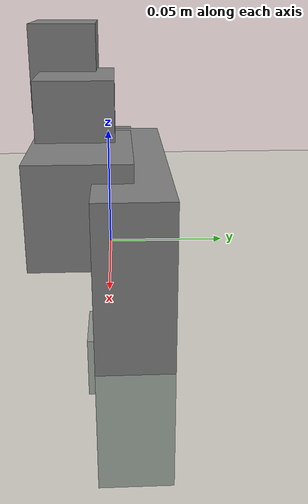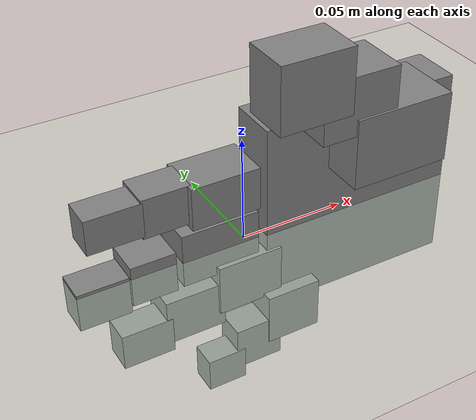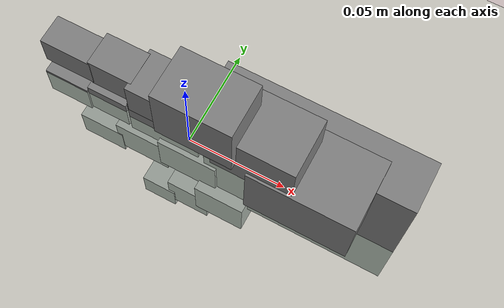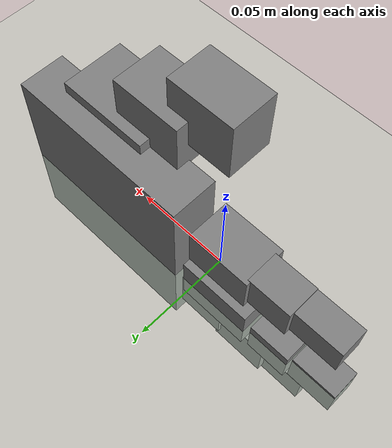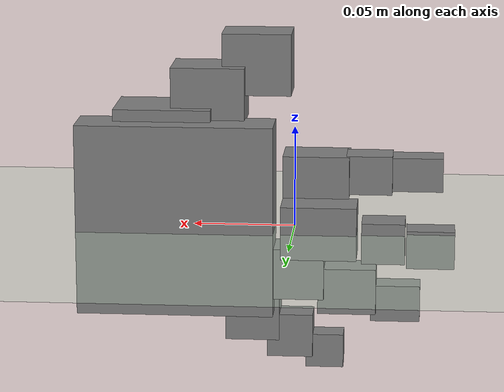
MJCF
<mujoco model="humanoid">
  <compiler coordinate="local"/>
  <statistic extent="2" center="0 0 1"/>
  <option timestep="0.00555"/>
  <default>
    <motor ctrlrange="-1 1" ctrllimited="true"/>
    <geom type="capsule" condim="3" friction="1.0 0.05 0.05" solimp=".9 .99 .003" solref=".015 1"/>
    <joint type="hinge" damping="0.1" stiffness="5" armature=".007" limited="true" solimplimit="0 .99 .01"/>
    <site size=".04" group="3"/>
    <default class="force-torque">
      <site type="box" size=".01 .01 .02" rgba="1 0 0 1"/>
    </default>
    <default class="touch">
      <site type="capsule" rgba="0 0 1 .3"/>
    </default>
  </default>
  <asset>
    <texture type="skybox" builtin="gradient" rgb1=".4 .5 .6" rgb2="0 0 0" width="100" height="100"/>
    <texture builtin="flat" height="1278" mark="cross" markrgb="1 1 1" name="texgeom" random="0.01" rgb1="0.8 0.6 0.4" rgb2="0.8 0.6 0.4" type="cube" width="127"/>
    <texture builtin="checker" height="100" name="texplane" rgb1="0 0 0" rgb2="0.8 0.8 0.8" type="2d" width="100"/>
    <material name="MatPlane" reflectance="0.5" shininess="1" specular="1" texrepeat="60 60" texture="texplane"/>
    <material name="geom" texture="texgeom" texuniform="true"/>
  </asset>
  <worldbody>
    <light cutoff="100" diffuse="1 1 1" dir="-0 0 -1.3" directional="true" exponent="1" pos="0 0 1.3" specular=".1 .1 .1"/>
    <geom conaffinity="1" condim="3" name="floor" pos="0 0 0" rgba="0.8 0.9 0.8 1" size="100 100 .2" type="plane" material="MatPlane"/>
    <body name="R_Wrist" pos="0.0957 0.0064 0.0062">
      <freejoint name="R_Wrist"/>
      <geom type="box" density="1206.741687" pos="-0.0375 0.0016 -0.0005" size="0.0485 0.012 0.0474" quat="1.0000 0.0000 0.0000 0.0000"/>
      <body name="R_Index1" pos="-0.0881 -0.0052 0.0207">
        <joint name="R_Index1_x" type="hinge" pos="0 0 0" axis="1 0 0" stiffness="100" damping="10" armature="0.02" range="-180.0000 180.0000"/>
        <joint name="R_Index1_y" type="hinge" pos="0 0 0" axis="0 1 0" stiffness="100" damping="10" armature="0.02" range="-180.0000 180.0000"/>
        <joint name="R_Index1_z" type="hinge" pos="0 0 0" axis="0 0 1" stiffness="100" damping="10" armature="0.02" range="-180.0000 180.0000"/>
        <geom type="box" density="601.310211" pos="-0.0187 0.0034 0.0012" size="0.0162 0.0112 0.0103" quat="1.0000 0.0000 0.0000 0.0000"/>
        <body name="R_Index2" pos="-0.0327 0.004 0.0022">
          <joint name="R_Index2_x" type="hinge" pos="0 0 0" axis="1 0 0" stiffness="100" damping="10" armature="0.02" range="-180.0000 180.0000"/>
          <joint name="R_Index2_y" type="hinge" pos="0 0 0" axis="0 1 0" stiffness="100" damping="10" armature="0.02" range="-180.0000 180.0000"/>
          <joint name="R_Index2_z" type="hinge" pos="0 0 0" axis="0 0 1" stiffness="100" damping="10" armature="0.02" range="-180.0000 180.0000"/>
          <geom type="box" density="603.558826" pos="-0.0119 -0.0001 -0.0001" size="0.0112 0.0085 0.0095" quat="1.0000 0.0000 0.0000 0.0000"/>
          <body name="R_Index3" pos="-0.0222 -0.0013 -0.0001">
            <joint name="R_Index3_x" type="hinge" pos="0 0 0" axis="1 0 0" stiffness="100" damping="10" armature="0.02" range="-180.0000 180.0000"/>
            <joint name="R_Index3_y" type="hinge" pos="0 0 0" axis="0 1 0" stiffness="100" damping="10" armature="0.02" range="-180.0000 180.0000"/>
            <joint name="R_Index3_z" type="hinge" pos="0 0 0" axis="0 0 1" stiffness="100" damping="10" armature="0.02" range="-180.0000 180.0000"/>
            <geom type="box" density="513.696058" pos="-0.0128 -0.0002 0.0001" size="0.0127 0.0073 0.0083" quat="1.0000 0.0000 0.0000 0.0000"/>
          </body>
        </body>
      </body>
      <body name="R_Middle1" pos="-0.0947 -0.0015 -0.0034">
        <joint name="R_Middle1_x" type="hinge" pos="0 0 0" axis="1 0 0" stiffness="100" damping="10" armature="0.02" range="-180.0000 180.0000"/>
        <joint name="R_Middle1_y" type="hinge" pos="0 0 0" axis="0 1 0" stiffness="100" damping="10" armature="0.02" range="-180.0000 180.0000"/>
        <joint name="R_Middle1_z" type="hinge" pos="0 0 0" axis="0 0 1" stiffness="100" damping="10" armature="0.02" range="-180.0000 180.0000"/>
        <geom type="box" density="509.710571" pos="-0.0135 0.0028 -0.0025" size="0.0186 0.0106 0.0132" quat="1.0000 0.0000 0.0000 0.0000"/>
        <body name="R_Middle2" pos="-0.0312 0.0019 -0.0056">
          <joint name="R_Middle2_x" type="hinge" pos="0 0 0" axis="1 0 0" stiffness="100" damping="10" armature="0.02" range="-180.0000 180.0000"/>
          <joint name="R_Middle2_y" type="hinge" pos="0 0 0" axis="0 1 0" stiffness="100" damping="10" armature="0.02" range="-180.0000 180.0000"/>
          <joint name="R_Middle2_z" type="hinge" pos="0 0 0" axis="0 0 1" stiffness="100" damping="10" armature="0.02" range="-180.0000 180.0000"/>
          <geom type="box" density="545.093854" pos="-0.0139 0.0005 -0.0018" size="0.0106 0.009 0.0101" quat="1.0000 0.0000 0.0000 0.0000"/>
          <body name="R_Middle3" pos="-0.0229 -0.0013 -0.0039">
            <joint name="R_Middle3_x" type="hinge" pos="0 0 0" axis="1 0 0" stiffness="100" damping="10" armature="0.02" range="-180.0000 180.0000"/>
            <joint name="R_Middle3_y" type="hinge" pos="0 0 0" axis="0 1 0" stiffness="100" damping="10" armature="0.02" range="-180.0000 180.0000"/>
            <joint name="R_Middle3_z" type="hinge" pos="0 0 0" axis="0 0 1" stiffness="100" damping="10" armature="0.02" range="-180.0000 180.0000"/>
            <geom type="box" density="456.774216" pos="-0.0141 0.0001 -0.0014" size="0.0118 0.0075 0.0094" quat="1.0000 0.0000 0.0000 0.0000"/>
          </body>
        </body>
      </body>
      <body name="R_Pinky1" pos="-0.0688 -0.0099 -0.0432">
        <joint name="R_Pinky1_x" type="hinge" pos="0 0 0" axis="1 0 0" stiffness="100" damping="10" armature="0.02" range="-180.0000 180.0000"/>
        <joint name="R_Pinky1_y" type="hinge" pos="0 0 0" axis="0 1 0" stiffness="100" damping="10" armature="0.02" range="-180.0000 180.0000"/>
        <joint name="R_Pinky1_z" type="hinge" pos="0 0 0" axis="0 0 1" stiffness="100" damping="10" armature="0.02" range="-180.0000 180.0000"/>
        <geom type="box" density="374.667888" pos="-0.0062 0.0016 -0.0077" size="0.0134 0.0084 0.013" quat="1.0000 0.0000 0.0000 0.0000"/>
        <body name="R_Pinky2" pos="-0.017 0.0001 -0.0125">
          <joint name="R_Pinky2_x" type="hinge" pos="0 0 0" axis="1 0 0" stiffness="100" damping="10" armature="0.02" range="-180.0000 180.0000"/>
          <joint name="R_Pinky2_y" type="hinge" pos="0 0 0" axis="0 1 0" stiffness="100" damping="10" armature="0.02" range="-180.0000 180.0000"/>
          <joint name="R_Pinky2_z" type="hinge" pos="0 0 0" axis="0 0 1" stiffness="100" damping="10" armature="0.02" range="-180.0000 180.0000"/>
          <geom type="box" density="379.54256" pos="-0.0078 0.0011 -0.0061" size="0.0114 0.0076 0.0108" quat="1.0000 0.0000 0.0000 0.0000"/>
          <body name="R_Pinky3" pos="-0.0159 -0.0007 -0.0103">
            <joint name="R_Pinky3_x" type="hinge" pos="0 0 0" axis="1 0 0" stiffness="100" damping="10" armature="0.02" range="-180.0000 180.0000"/>
            <joint name="R_Pinky3_y" type="hinge" pos="0 0 0" axis="0 1 0" stiffness="100" damping="10" armature="0.02" range="-180.0000 180.0000"/>
            <joint name="R_Pinky3_z" type="hinge" pos="0 0 0" axis="0 0 1" stiffness="100" damping="10" armature="0.02" range="-180.0000 180.0000"/>
            <geom type="box" density="394.93991" pos="-0.0091 -0.0001 -0.0043" size="0.0094 0.0064 0.0084" quat="1.0000 0.0000 0.0000 0.0000"/>
          </body>
        </body>
      </body>
      <body name="R_Ring1" pos="-0.0817 -0.004 -0.0267">
        <joint name="R_Ring1_x" type="hinge" pos="0 0 0" axis="1 0 0" stiffness="100" damping="10" armature="0.02" range="-180.0000 180.0000"/>
        <joint name="R_Ring1_y" type="hinge" pos="0 0 0" axis="0 1 0" stiffness="100" damping="10" armature="0.02" range="-180.0000 180.0000"/>
        <joint name="R_Ring1_z" type="hinge" pos="0 0 0" axis="0 0 1" stiffness="100" damping="10" armature="0.02" range="-180.0000 180.0000"/>
        <geom type="box" density="465.852365" pos="-0.0133 0.0026 -0.0006" size="0.0158 0.0104 0.0126" quat="1.0000 0.0000 0.0000 0.0000"/>
        <body name="R_Ring2" pos="-0.0283 0.0021 -0.0051">
          <joint name="R_Ring2_x" type="hinge" pos="0 0 0" axis="1 0 0" stiffness="100" damping="10" armature="0.02" range="-180.0000 180.0000"/>
          <joint name="R_Ring2_y" type="hinge" pos="0 0 0" axis="0 1 0" stiffness="100" damping="10" armature="0.02" range="-180.0000 180.0000"/>
          <joint name="R_Ring2_z" type="hinge" pos="0 0 0" axis="0 0 1" stiffness="100" damping="10" armature="0.02" range="-180.0000 180.0000"/>
          <geom type="box" density="445.376858" pos="-0.0121 0.0004 -0.0043" size="0.0143 0.0088 0.0114" quat="1.0000 0.0000 0.0000 0.0000"/>
          <body name="R_Ring3" pos="-0.0235 -0.0017 -0.0076">
            <joint name="R_Ring3_x" type="hinge" pos="0 0 0" axis="1 0 0" stiffness="100" damping="10" armature="0.02" range="-180.0000 180.0000"/>
            <joint name="R_Ring3_y" type="hinge" pos="0 0 0" axis="0 1 0" stiffness="100" damping="10" armature="0.02" range="-180.0000 180.0000"/>
            <joint name="R_Ring3_z" type="hinge" pos="0 0 0" axis="0 0 1" stiffness="100" damping="10" armature="0.02" range="-180.0000 180.0000"/>
            <geom type="box" density="478.371764" pos="-0.0124 -0.0000 -0.0034" size="0.0122 0.007 0.009" quat="1.0000 0.0000 0.0000 0.0000"/>
          </body>
        </body>
      </body>
      <body name="R_Thumb1" pos="-0.0241 -0.0155 0.0258">
        <joint name="R_Thumb1_x" type="hinge" pos="0 0 0" axis="1 0 0" stiffness="100" damping="10" armature="0.02" range="-180.0000 180.0000"/>
        <joint name="R_Thumb1_y" type="hinge" pos="0 0 0" axis="0 1 0" stiffness="100" damping="10" armature="0.02" range="-180.0000 180.0000"/>
        <joint name="R_Thumb1_z" type="hinge" pos="0 0 0" axis="0 0 1" stiffness="100" damping="10" armature="0.02" range="-180.0000 180.0000"/>
        <geom type="box" density="267.274643" pos="-0.0065 0.0012 0.0101" size="0.024 0.0164 0.0168" quat="1.0000 0.0000 0.0000 0.0000"/>
        <body name="R_Thumb2" pos="-0.0196 0.0009 0.0237">
          <joint name="R_Thumb2_x" type="hinge" pos="0 0 0" axis="1 0 0" stiffness="100" damping="10" armature="0.02" range="-180.0000 180.0000"/>
          <joint name="R_Thumb2_y" type="hinge" pos="0 0 0" axis="0 1 0" stiffness="100" damping="10" armature="0.02" range="-180.0000 180.0000"/>
          <joint name="R_Thumb2_z" type="hinge" pos="0 0 0" axis="0 0 1" stiffness="100" damping="10" armature="0.02" range="-180.0000 180.0000"/>
          <geom type="box" density="313.954064" pos="-0.0090 -0.0019 0.0093" size="0.0182 0.0131 0.0139" quat="1.0000 0.0000 0.0000 0.0000"/>
          <body name="R_Thumb3" pos="-0.0222 -0.0054 0.0145">
            <joint name="R_Thumb3_x" type="hinge" pos="0 0 0" axis="1 0 0" stiffness="100" damping="10" armature="0.02" range="-180.0000 180.0000"/>
            <joint name="R_Thumb3_y" type="hinge" pos="0 0 0" axis="0 1 0" stiffness="100" damping="10" armature="0.02" range="-180.0000 180.0000"/>
            <joint name="R_Thumb3_z" type="hinge" pos="0 0 0" axis="0 0 1" stiffness="100" damping="10" armature="0.02" range="-180.0000 180.0000"/>
            <geom type="box" density="312.259809" pos="-0.0105 -0.0014 0.0095" size="0.0171 0.0117 0.0153" quat="1.0000 0.0000 0.0000 0.0000"/>
          </body>
        </body>
      </body>
    </body>
  </worldbody>
  <actuator>
    <motor name="R_Index1_x" joint="R_Index1_x" gear="500"/>
    <motor name="R_Index1_y" joint="R_Index1_y" gear="500"/>
    <motor name="R_Index1_z" joint="R_Index1_z" gear="500"/>
    <motor name="R_Index2_x" joint="R_Index2_x" gear="500"/>
    <motor name="R_Index2_y" joint="R_Index2_y" gear="500"/>
    <motor name="R_Index2_z" joint="R_Index2_z" gear="500"/>
    <motor name="R_Index3_x" joint="R_Index3_x" gear="500"/>
    <motor name="R_Index3_y" joint="R_Index3_y" gear="500"/>
    <motor name="R_Index3_z" joint="R_Index3_z" gear="500"/>
    <motor name="R_Middle1_x" joint="R_Middle1_x" gear="500"/>
    <motor name="R_Middle1_y" joint="R_Middle1_y" gear="500"/>
    <motor name="R_Middle1_z" joint="R_Middle1_z" gear="500"/>
    <motor name="R_Middle2_x" joint="R_Middle2_x" gear="500"/>
    <motor name="R_Middle2_y" joint="R_Middle2_y" gear="500"/>
    <motor name="R_Middle2_z" joint="R_Middle2_z" gear="500"/>
    <motor name="R_Middle3_x" joint="R_Middle3_x" gear="500"/>
    <motor name="R_Middle3_y" joint="R_Middle3_y" gear="500"/>
    <motor name="R_Middle3_z" joint="R_Middle3_z" gear="500"/>
    <motor name="R_Pinky1_x" joint="R_Pinky1_x" gear="500"/>
    <motor name="R_Pinky1_y" joint="R_Pinky1_y" gear="500"/>
    <motor name="R_Pinky1_z" joint="R_Pinky1_z" gear="500"/>
    <motor name="R_Pinky2_x" joint="R_Pinky2_x" gear="500"/>
    <motor name="R_Pinky2_y" joint="R_Pinky2_y" gear="500"/>
    <motor name="R_Pinky2_z" joint="R_Pinky2_z" gear="500"/>
    <motor name="R_Pinky3_x" joint="R_Pinky3_x" gear="500"/>
    <motor name="R_Pinky3_y" joint="R_Pinky3_y" gear="500"/>
    <motor name="R_Pinky3_z" joint="R_Pinky3_z" gear="500"/>
    <motor name="R_Ring1_x" joint="R_Ring1_x" gear="500"/>
    <motor name="R_Ring1_y" joint="R_Ring1_y" gear="500"/>
    <motor name="R_Ring1_z" joint="R_Ring1_z" gear="500"/>
    <motor name="R_Ring2_x" joint="R_Ring2_x" gear="500"/>
    <motor name="R_Ring2_y" joint="R_Ring2_y" gear="500"/>
    <motor name="R_Ring2_z" joint="R_Ring2_z" gear="500"/>
    <motor name="R_Ring3_x" joint="R_Ring3_x" gear="500"/>
    <motor name="R_Ring3_y" joint="R_Ring3_y" gear="500"/>
    <motor name="R_Ring3_z" joint="R_Ring3_z" gear="500"/>
    <motor name="R_Thumb1_x" joint="R_Thumb1_x" gear="500"/>
    <motor name="R_Thumb1_y" joint="R_Thumb1_y" gear="500"/>
    <motor name="R_Thumb1_z" joint="R_Thumb1_z" gear="500"/>
    <motor name="R_Thumb2_x" joint="R_Thumb2_x" gear="500"/>
    <motor name="R_Thumb2_y" joint="R_Thumb2_y" gear="500"/>
    <motor name="R_Thumb2_z" joint="R_Thumb2_z" gear="500"/>
    <motor name="R_Thumb3_x" joint="R_Thumb3_x" gear="500"/>
    <motor name="R_Thumb3_y" joint="R_Thumb3_y" gear="500"/>
    <motor name="R_Thumb3_z" joint="R_Thumb3_z" gear="500"/>
  </actuator>
  <contact/>
  <size njmax="700" nconmax="700"/>
</mujoco>
